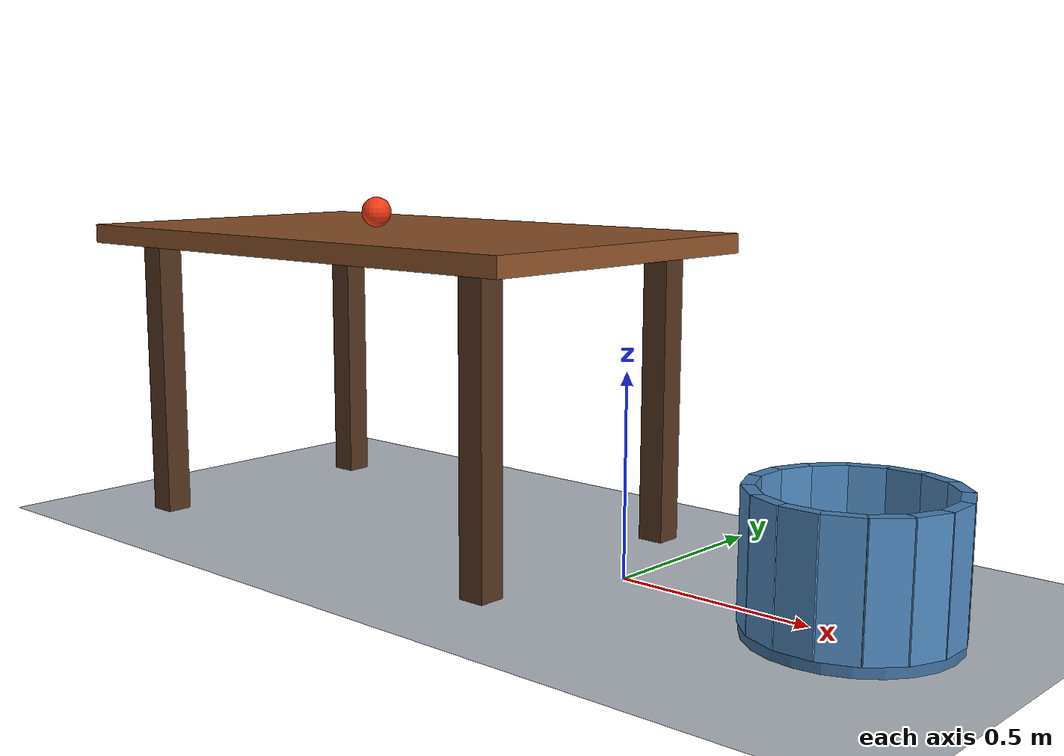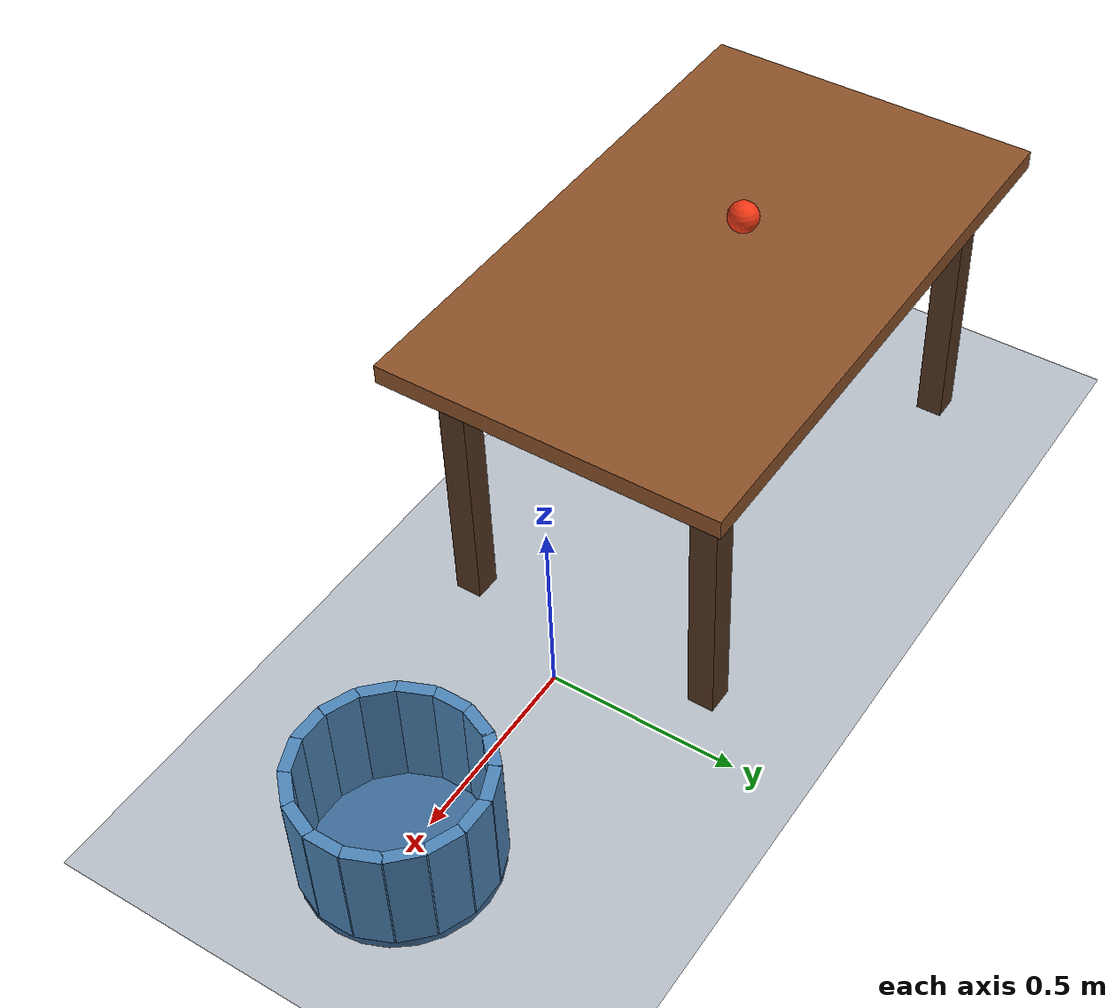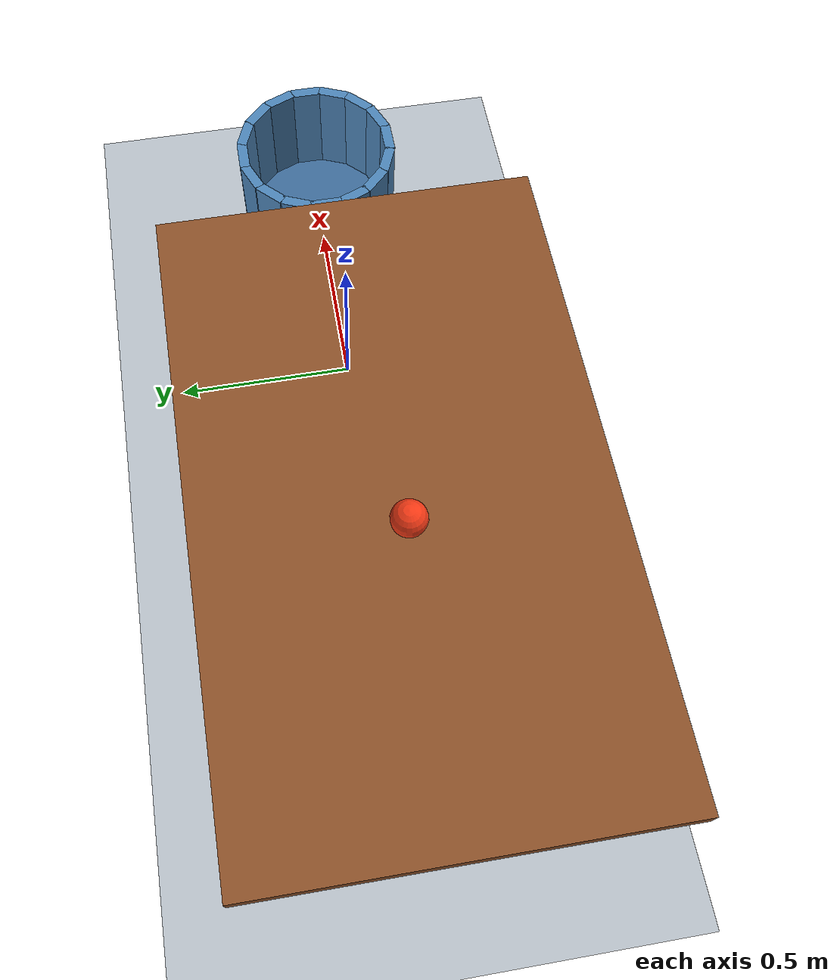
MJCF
<mujoco model="ball_table_bucket">
  <compiler angle="degree"/>
  <option timestep="0.002" gravity="0 0 -9.81" integrator="implicitfast" cone="elliptic" iterations="100"/>
  <visual>
    <global azimuth="135" elevation="-25"/>
  </visual>

  <worldbody>
    <light name="overhead" pos="-0.2 -1 3" dir="0 0 -1" diffuse="0.8 0.8 0.8"/>
    <camera name="overview" pos="1.7 -3.2 2.3" xyaxes="0.848 0.53 0 -0.244 0.390 0.888"/>
    <geom name="floor" type="plane" pos="0 0 0" size="4 4 0.1" friction="0.8 0.005 0.0001" rgba="0.72 0.75 0.78 1"/>

    <body name="table" pos="-0.75 0 0">
      <geom name="table_top" type="box" pos="0 0 0.775" size="0.75 0.45 0.025" condim="6" friction="0.8 0.005 0.0001" solref="0.01 1" rgba="0.55 0.32 0.16 1"/>
      <geom name="table_leg_front_left" type="box" pos="-0.60 -0.34 0.375" size="0.035 0.035 0.375" rgba="0.32 0.20 0.12 1"/>
      <geom name="table_leg_back_left" type="box" pos="-0.60 0.34 0.375" size="0.035 0.035 0.375" rgba="0.32 0.20 0.12 1"/>
      <geom name="table_leg_front_right" type="box" pos="0.60 -0.34 0.375" size="0.035 0.035 0.375" rgba="0.32 0.20 0.12 1"/>
      <geom name="table_leg_back_right" type="box" pos="0.60 0.34 0.375" size="0.035 0.035 0.375" rgba="0.32 0.20 0.12 1"/>
    </body>

    <body name="bucket" pos="0.60 0 0">
      <geom name="bucket_bottom" type="cylinder" pos="0 0 0.0125" size="0.235 0.0125" priority="1" condim="6" friction="1 0.01 0.01" solref="0.015 1" rgba="0.24 0.42 0.60 1"/>
      <geom name="bucket_wall_00" type="box" pos="0.220000 0 0.175" euler="0 0 0" size="0.015 0.045 0.15" priority="1" condim="6" friction="1 0.01 0.01" solref="0.015 1" rgba="0.30 0.52 0.72 1"/>
      <geom name="bucket_wall_01" type="box" pos="0.203253 0.084190 0.175" euler="0 0 22.5" size="0.015 0.045 0.15" priority="1" condim="6" friction="1 0.01 0.01" solref="0.015 1" rgba="0.30 0.52 0.72 1"/>
      <geom name="bucket_wall_02" type="box" pos="0.155563 0.155563 0.175" euler="0 0 45" size="0.015 0.045 0.15" priority="1" condim="6" friction="1 0.01 0.01" solref="0.015 1" rgba="0.30 0.52 0.72 1"/>
      <geom name="bucket_wall_03" type="box" pos="0.084190 0.203253 0.175" euler="0 0 67.5" size="0.015 0.045 0.15" priority="1" condim="6" friction="1 0.01 0.01" solref="0.015 1" rgba="0.30 0.52 0.72 1"/>
      <geom name="bucket_wall_04" type="box" pos="0 0.220000 0.175" euler="0 0 90" size="0.015 0.045 0.15" priority="1" condim="6" friction="1 0.01 0.01" solref="0.015 1" rgba="0.30 0.52 0.72 1"/>
      <geom name="bucket_wall_05" type="box" pos="-0.084190 0.203253 0.175" euler="0 0 112.5" size="0.015 0.045 0.15" priority="1" condim="6" friction="1 0.01 0.01" solref="0.015 1" rgba="0.30 0.52 0.72 1"/>
      <geom name="bucket_wall_06" type="box" pos="-0.155563 0.155563 0.175" euler="0 0 135" size="0.015 0.045 0.15" priority="1" condim="6" friction="1 0.01 0.01" solref="0.015 1" rgba="0.30 0.52 0.72 1"/>
      <geom name="bucket_wall_07" type="box" pos="-0.203253 0.084190 0.175" euler="0 0 157.5" size="0.015 0.045 0.15" priority="1" condim="6" friction="1 0.01 0.01" solref="0.015 1" rgba="0.30 0.52 0.72 1"/>
      <geom name="bucket_wall_08" type="box" pos="-0.220000 0 0.175" euler="0 0 180" size="0.015 0.045 0.15" priority="1" condim="6" friction="1 0.01 0.01" solref="0.015 1" rgba="0.30 0.52 0.72 1"/>
      <geom name="bucket_wall_09" type="box" pos="-0.203253 -0.084190 0.175" euler="0 0 202.5" size="0.015 0.045 0.15" priority="1" condim="6" friction="1 0.01 0.01" solref="0.015 1" rgba="0.30 0.52 0.72 1"/>
      <geom name="bucket_wall_10" type="box" pos="-0.155563 -0.155563 0.175" euler="0 0 225" size="0.015 0.045 0.15" priority="1" condim="6" friction="1 0.01 0.01" solref="0.015 1" rgba="0.30 0.52 0.72 1"/>
      <geom name="bucket_wall_11" type="box" pos="-0.084190 -0.203253 0.175" euler="0 0 247.5" size="0.015 0.045 0.15" priority="1" condim="6" friction="1 0.01 0.01" solref="0.015 1" rgba="0.30 0.52 0.72 1"/>
      <geom name="bucket_wall_12" type="box" pos="0 -0.220000 0.175" euler="0 0 270" size="0.015 0.045 0.15" priority="1" condim="6" friction="1 0.01 0.01" solref="0.015 1" rgba="0.30 0.52 0.72 1"/>
      <geom name="bucket_wall_13" type="box" pos="0.084190 -0.203253 0.175" euler="0 0 292.5" size="0.015 0.045 0.15" priority="1" condim="6" friction="1 0.01 0.01" solref="0.015 1" rgba="0.30 0.52 0.72 1"/>
      <geom name="bucket_wall_14" type="box" pos="0.155563 -0.155563 0.175" euler="0 0 315" size="0.015 0.045 0.15" priority="1" condim="6" friction="1 0.01 0.01" solref="0.015 1" rgba="0.30 0.52 0.72 1"/>
      <geom name="bucket_wall_15" type="box" pos="0.203253 -0.084190 0.175" euler="0 0 337.5" size="0.015 0.045 0.15" priority="1" condim="6" friction="1 0.01 0.01" solref="0.015 1" rgba="0.30 0.52 0.72 1"/>
    </body>

    <body name="ball" pos="-0.85 0 0.84">
      <freejoint name="ball_free"/>
      <geom name="ball" type="sphere" size="0.04" mass="0.12" condim="6" friction="0.8 0.005 0.0001" solref="0.01 1" rgba="0.95 0.22 0.08 1"/>
    </body>
  </worldbody>

  <keyframe>
    <key name="start" qpos="-0.85 0 0.84 1 0 0 0" qvel="1.6 0 0 0 40 0"/>
  </keyframe>
</mujoco>
